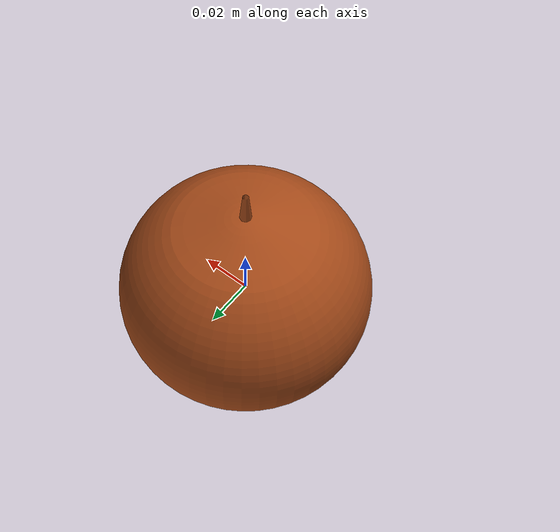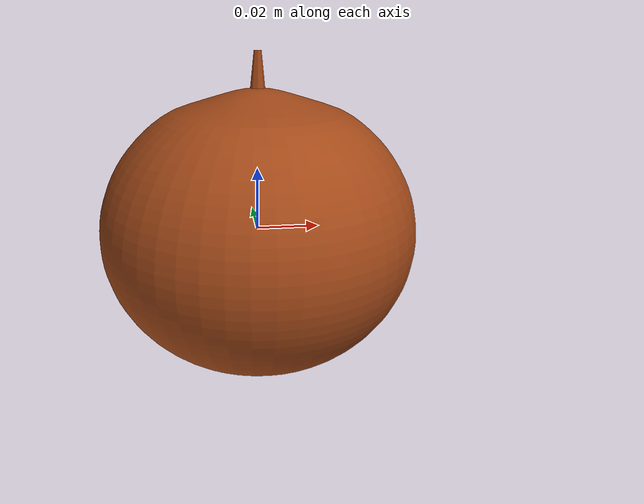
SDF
<?xml version="1.0" ?>
<sdf version="1.7">
  <model name="fragile_apple_01">
    <pose>0 0 0 0 0 0</pose>
    <link name="link">
      <inertial>
        <mass>0.40841</mass>
        <inertia>
          <ixx>0.00040841</ixx>
          <iyy>0.00040841</iyy>
          <izz>0.00040841</izz>
          <ixy>0</ixy>
          <ixz>0</ixz>
          <iyz>0</iyz>
        </inertia>
      </inertial>

      <collision name="collision">
        <geometry>
          <sphere>
            <radius>0.05000</radius>
          </sphere>
        </geometry>
        <surface>
          <friction>
            <ode>
              <mu>0.80</mu>
              <mu2>0.80</mu2>
            </ode>
          </friction>
          <contact>
            <ode>
              <kp>7943.3</kp>
              <kd>1.0</kd>
              <min_depth>0.001</min_depth>
            </ode>
          </contact>
        </surface>
      </collision>

      <collision name="flat_base">
        <pose>0 0 -0.04500 0 0 0</pose>
        <geometry>
          <cylinder>
            <radius>0.0250</radius>
            <length>0.0100</length>
          </cylinder>
        </geometry>
        <surface>
          <friction>
            <ode>
              <mu>0.80</mu>
              <mu2>0.80</mu2>
            </ode>
          </friction>
          <contact>
            <ode>
              <kp>7943.3</kp>
              <kd>1.0</kd>
              <min_depth>0.001</min_depth>
            </ode>
          </contact>
        </surface>
      </collision>

      <visual name="visual">
        <geometry>
          <mesh>
            <uri>model://apple_01/meshes/apple_01_v4.obj</uri>
            <scale>0.05000 0.05000 0.05000</scale>
          </mesh>
        </geometry>
        <material>
          <ambient>0.64 0.286 0.096 1</ambient>
          <diffuse>0.64 0.286 0.096 1</diffuse>
          <specular>0.35 0.35 0.35 1</specular>
        </material>
      </visual>
    </link>
      <plugin
      filename="libignition-gazebo-pose-publisher-system.so"
      name="ignition::gazebo::systems::PosePublisher">
      <publish_link_pose>false</publish_link_pose>
      <publish_nested_model_pose>true</publish_nested_model_pose>
      <use_pose_vector_msg>false</use_pose_vector_msg>
      <update_frequency>20</update_frequency>
    </plugin>
</model>
</sdf>
